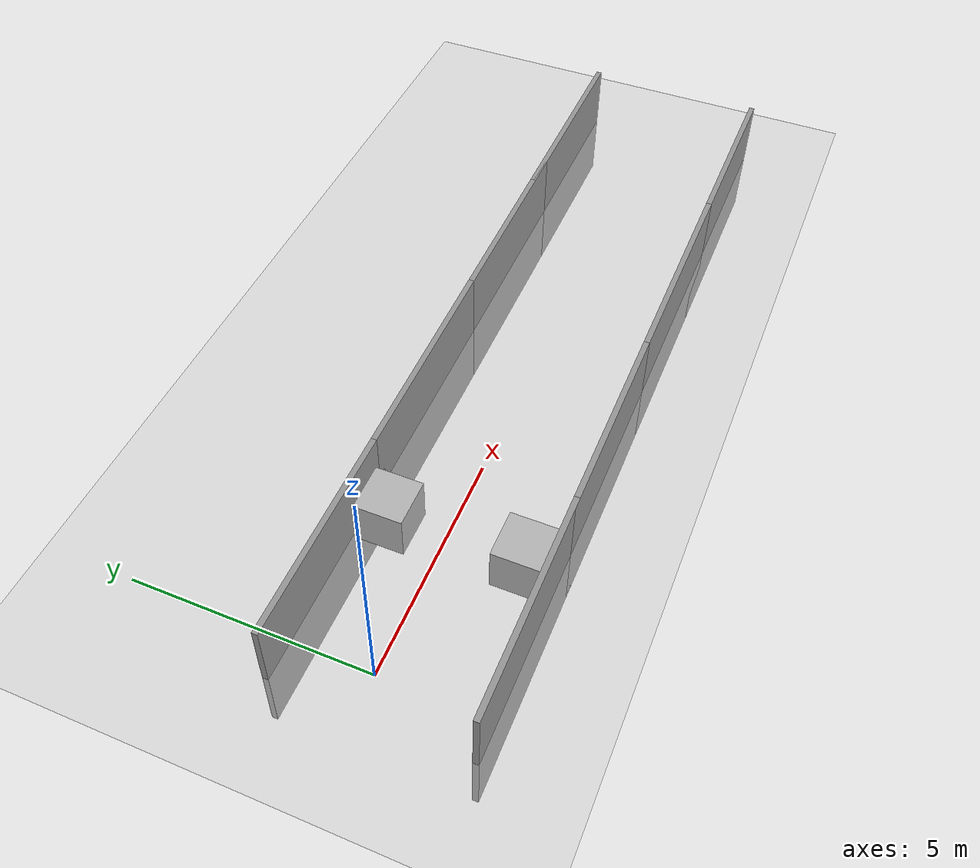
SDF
<sdf version="1.4">
 <world name="default">
  <physics type="ode">
   <gravity>0 0 -9.81</gravity>
   <ode>
    <solver><type>quick</type><iters>20</iters><sor>1</sor></solver>
    <constraints>
     <cfm>0</cfm>
     <erp>0.2</erp>
     <contact_max_correcting_vel>100</contact_max_correcting_vel>
     <contact_surface_layer>0</contact_surface_layer>
    </constraints>
   </ode>
   <real_time_update_rate>1000</real_time_update_rate>
   <max_step_size>0.001</max_step_size>
   <real_time_factor>1</real_time_factor>
  </physics>
  <light name="sun" type="directional">
   <pose>0 0 10 0 -0 0</pose>
   <diffuse>0.8 0.8 0.8 1</diffuse>
   <specular>0.2 0.2 0.2 1</specular>
   <attenuation>
    <range>1000</range>
    <constant>0.9</constant>
    <linear>0.01</linear>
    <quadratic>0.001</quadratic>
   </attenuation>
   <direction>-0.5 0.1 -0.9</direction>
  </light>
  <model name="ground_plane">
   <static>1</static>
   <link name="link">
    <collision name="collision">
     <geometry><plane><normal>0 0 1</normal><size>100 100</size></plane></geometry>
     <surface><friction><ode><mu>100</mu><mu2>50</mu2></ode></friction></surface>
    </collision>
    <visual name="visual">
     <cast_shadows>0</cast_shadows>
     <geometry><plane><normal>0 0 1</normal><size>100 100</size></plane></geometry>
     <material>
      <script><uri>file://media/materials/scripts/gazebo.material</uri><name>Gazebo/Grey</name></script>
     </material>
    </visual>
    <velocity_decay><linear>0</linear><angular>0</angular></velocity_decay>
   </link>
  </model>
  <scene><ambient>0.4 0.4 0.4 1</ambient><background>0.7 0.7 0.7 1</background><shadows>1</shadows></scene>
  <spherical_coordinates>
   <surface_model>EARTH_WGS84</surface_model>
   <latitude_deg>0</latitude_deg>
   <longitude_deg>0</longitude_deg>
   <elevation>0</elevation>
   <heading_deg>0</heading_deg>
  </spherical_coordinates>
  <model name="road_0">
   <static>1</static>
   <link name="Wall_0">
    <collision name="Wall_0_Collision">
     <geometry><box><size>4.76 0.12 3</size></box></geometry>
     <pose>2.58 -0.26 0 0 -0 0</pose>
    </collision>
    <visual name="Wall_0_Visual">
     <geometry><box><size>4.76 0.12 3</size></box></geometry>
     <material>
      <script><uri>file://media/materials/scripts/gazebo.material</uri><name>Gazebo/Grey</name></script>
     </material>
     <pose>2.58 -0.26 0 0 -0 0</pose>
    </visual>
    <velocity_decay><linear>0</linear><angular>0</angular></velocity_decay>
   </link>
   <pose>-1 -2 0 0 -0 0</pose>
  </model>
  <model name="road_1">
   <static>1</static>
   <link name="Wall_0">
    <collision name="Wall_0_Collision">
     <geometry><box><size>4.76 0.12 3</size></box></geometry>
     <pose>2.58 -0.26 0 0 -0 0</pose>
    </collision>
    <visual name="Wall_0_Visual">
     <geometry><box><size>4.76 0.12 3</size></box></geometry>
     <material>
      <script><uri>file://media/materials/scripts/gazebo.material</uri><name>Gazebo/Grey</name></script>
     </material>
     <pose>2.58 -0.26 0 0 -0 0</pose>
    </visual>
    <velocity_decay><linear>0</linear><angular>0</angular></velocity_decay>
   </link>
   <pose>-1 2 0 0 -0 0</pose>
  </model>
  <model name="road_2">
   <static>1</static>
   <link name="Wall_0">
    <collision name="Wall_0_Collision">
     <geometry><box><size>4.76 0.12 3</size></box></geometry>
     <pose>2.58 -0.26 0 0 -0 0</pose>
    </collision>
    <visual name="Wall_0_Visual">
     <geometry><box><size>4.76 0.12 3</size></box></geometry>
     <material>
      <script><uri>file://media/materials/scripts/gazebo.material</uri><name>Gazebo/Grey</name></script>
     </material>
     <pose>2.58 -0.26 0 0 -0 0</pose>
    </visual>
    <velocity_decay><linear>0</linear><angular>0</angular></velocity_decay>
   </link>
   <pose>3.53349 2 0 0 -0 0</pose>
  </model>
  <model name="road_3">
   <static>1</static>
   <link name="Wall_0">
    <collision name="Wall_0_Collision">
     <geometry><box><size>4.76 0.12 3</size></box></geometry>
     <pose>2.58 -0.26 0 0 -0 0</pose>
    </collision>
    <visual name="Wall_0_Visual">
     <geometry><box><size>4.76 0.12 3</size></box></geometry>
     <material>
      <script><uri>file://media/materials/scripts/gazebo.material</uri><name>Gazebo/Grey</name></script>
     </material>
     <pose>2.58 -0.26 0 0 -0 0</pose>
    </visual>
    <velocity_decay><linear>0</linear><angular>0</angular></velocity_decay>
   </link>
   <pose>3.50143 -2 0 0 -0 0</pose>
  </model>
  <model name="road_4">
   <static>1</static>
   <link name="Wall_0">
    <collision name="Wall_0_Collision">
     <geometry><box><size>4.76 0.12 3</size></box></geometry>
     <pose>2.58 -0.26 0 0 -0 0</pose>
    </collision>
    <visual name="Wall_0_Visual">
     <geometry><box><size>4.76 0.12 3</size></box></geometry>
     <material>
      <script><uri>file://media/materials/scripts/gazebo.material</uri><name>Gazebo/Grey</name></script>
     </material>
     <pose>2.58 -0.26 0 0 -0 0</pose>
    </visual>
    <velocity_decay><linear>0</linear><angular>0</angular></velocity_decay>
   </link>
   <pose>8 2 0 0 -0 0</pose>
  </model>
  <model name="road_5">
   <static>1</static>
   <link name="Wall_0">
    <collision name="Wall_0_Collision">
     <geometry><box><size>4.76 0.12 3</size></box></geometry>
     <pose>2.58 -0.26 0 0 -0 0</pose>
    </collision>
    <visual name="Wall_0_Visual">
     <geometry><box><size>4.76 0.12 3</size></box></geometry>
     <material>
      <script><uri>file://media/materials/scripts/gazebo.material</uri><name>Gazebo/Grey</name></script>
     </material>
     <pose>2.58 -0.26 0 0 -0 0</pose>
    </visual>
    <velocity_decay><linear>0</linear><angular>0</angular></velocity_decay>
   </link>
   <pose>8 -2 0 0 -0 0</pose>
  </model>
  <model name="road_6">
   <static>1</static>
   <link name="Wall_0">
    <collision name="Wall_0_Collision">
     <geometry><box><size>4.76 0.12 3</size></box></geometry>
     <pose>2.58 -0.26 0 0 -0 0</pose>
    </collision>
    <visual name="Wall_0_Visual">
     <geometry><box><size>4.76 0.12 3</size></box></geometry>
     <material>
      <script><uri>file://media/materials/scripts/gazebo.material</uri><name>Gazebo/Grey</name></script>
     </material>
     <pose>2.58 -0.26 0 0 -0 0</pose>
    </visual>
    <velocity_decay><linear>0</linear><angular>0</angular></velocity_decay>
   </link>
   <pose>12 2 0 0 -0 0</pose>
  </model>
  <model name="road_7">
   <static>1</static>
   <link name="Wall_0">
    <collision name="Wall_0_Collision">
     <geometry><box><size>4.76 0.12 3</size></box></geometry>
     <pose>2.58 -0.26 0 0 -0 0</pose>
    </collision>
    <visual name="Wall_0_Visual">
     <geometry><box><size>4.76 0.12 3</size></box></geometry>
     <material>
      <script><uri>file://media/materials/scripts/gazebo.material</uri><name>Gazebo/Grey</name></script>
     </material>
     <pose>2.58 -0.26 0 0 -0 0</pose>
    </visual>
    <velocity_decay><linear>0</linear><angular>0</angular></velocity_decay>
   </link>
   <pose>12 -2 0 0 -0 0</pose>
  </model>
  <model name="face">
   <static>0</static>
   <link name="face">
    <pose>0 0 0.5 0 -0 0</pose>
    <collision name="collision"><geometry><box><size>1 1 1</size></box></geometry></collision>
    <visual name="visual">
     <geometry><box><size>1 1 1</size></box></geometry>
     <material>
      <script>
       <uri>model://face/material/scripts</uri>
       <uri>model://face/material/textures</uri>
       <name>Custom/face</name>
      </script>
     </material>
    </visual>
    <velocity_decay><linear>0</linear><angular>0</angular></velocity_decay>
    <inertial>
     <inertia><ixx>1</ixx><ixy>0</ixy><ixz>0</ixz><iyy>1</iyy><iyz>0</iyz><izz>1</izz></inertia>
     <mass>1</mass>
    </inertial>
   </link>
   <pose>2.98685 1.10537 0 -1e-06 -6.46235e-27 3.4e-05</pose>
  </model>
  <model name="face_0">
   <static>0</static>
   <link name="face">
    <pose>0 0 0.5 0 -0 0</pose>
    <collision name="collision"><geometry><box><size>1 1 1</size></box></geometry></collision>
    <visual name="visual">
     <geometry><box><size>1 1 1</size></box></geometry>
     <material>
      <script>
       <uri>model://face/material/scripts</uri>
       <uri>model://face/material/textures</uri>
       <name>Custom/face</name>
      </script>
     </material>
    </visual>
    <velocity_decay><linear>0</linear><angular>0</angular></velocity_decay>
    <inertial>
     <inertia><ixx>1</ixx><ixy>0</ixy><ixz>0</ixz><iyy>1</iyy><iyz>0</iyz><izz>1</izz></inertia>
     <mass>1</mass>
    </inertial>
   </link>
   <pose>3.01102 -1.63814 -1e-06 -1.61559e-27 -2e-06 5e-06</pose>
  </model>
 </world>
</sdf>
